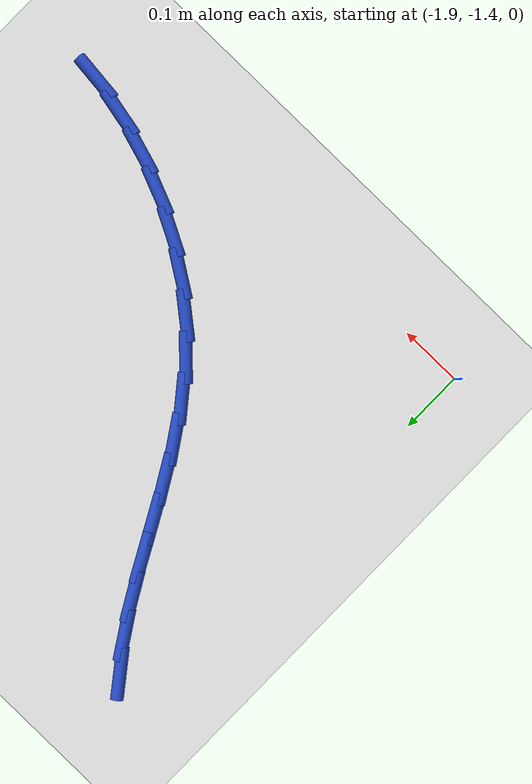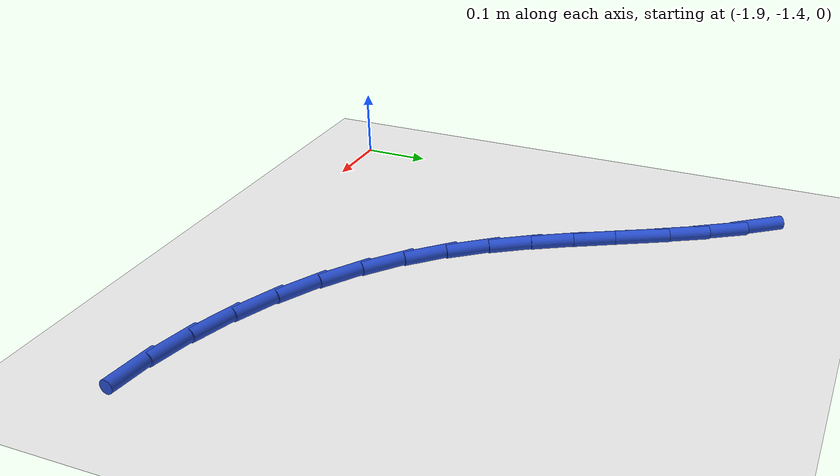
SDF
<sdf version="1.6">
 <world name="default">
  <model name="ground_plane">
   <static>1</static>
   <link name="link">
    <collision name="collision">
     <geometry><plane><normal>0 0 1</normal><size>100 100</size></plane></geometry>
     <surface><friction><ode><mu>100</mu><mu2>50</mu2></ode></friction></surface>
    </collision>
    <visual name="visual">
     <cast_shadows>0</cast_shadows>
     <geometry><plane><normal>0 0 1</normal><size>100 100</size></plane></geometry>
     <material>
      <script><uri>file://media/materials/scripts/gazebo.material</uri><name>Gazebo/WhiteGlow</name></script>
     </material>
    </visual>
   </link>
  </model>
  <model name="line">
   <link name="link_83">
    <pose>-1.8468231066801528 -0.7309183405497005 0.01 0 1.57 -0.9174701893394768</pose>
    <collision name="collision">
     <geometry><cylinder><radius>0.01</radius><length>0.08</length></cylinder></geometry>
    </collision>
    <visual name="visual">
     <material>
      <script><name>Gazebo/Blue</name><uri>file://media/materials/scripts/gazebo.material</uri></script>
     </material>
     <geometry><cylinder><radius>0.01</radius><length>0.08</length></cylinder></geometry>
    </visual>
   </link>
   <link name="link_84">
    <pose>-1.8115029330920873 -0.7770603903825963 0.01 0 1.57 -1.0002982382867316</pose>
    <collision name="collision">
     <geometry><cylinder><radius>0.01</radius><length>0.08</length></cylinder></geometry>
    </collision>
    <visual name="visual">
     <material>
      <script><name>Gazebo/Blue</name><uri>file://media/materials/scripts/gazebo.material</uri></script>
     </material>
     <geometry><cylinder><radius>0.01</radius><length>0.08</length></cylinder></geometry>
    </visual>
   </link>
   <link name="link_85">
    <pose>-1.7795704588663643 -0.8268249104516385 0.01 0 1.57 -1.0523314707818443</pose>
    <collision name="collision">
     <geometry><cylinder><radius>0.01</radius><length>0.08</length></cylinder></geometry>
    </collision>
    <visual name="visual">
     <material>
      <script><name>Gazebo/Blue</name><uri>file://media/materials/scripts/gazebo.material</uri></script>
     </material>
     <geometry><cylinder><radius>0.01</radius><length>0.08</length></cylinder></geometry>
    </visual>
   </link>
   <link name="link_86">
    <pose>-1.7497337659801382 -0.8791217979571092 0.01 0 1.57 -1.0754658863200435</pose>
    <collision name="collision">
     <geometry><cylinder><radius>0.01</radius><length>0.08</length></cylinder></geometry>
    </collision>
    <visual name="visual">
     <material>
      <script><name>Gazebo/Blue</name><uri>file://media/materials/scripts/gazebo.material</uri></script>
     </material>
     <geometry><cylinder><radius>0.01</radius><length>0.08</length></cylinder></geometry>
    </visual>
   </link>
   <link name="link_87">
    <pose>-1.720700936410567 -0.9328609500992884 0.01 0 1.57 -1.071214096571319</pose>
    <collision name="collision">
     <geometry><cylinder><radius>0.01</radius><length>0.08</length></cylinder></geometry>
    </collision>
    <visual name="visual">
     <material>
      <script><name>Gazebo/Blue</name><uri>file://media/materials/scripts/gazebo.material</uri></script>
     </material>
     <geometry><cylinder><radius>0.01</radius><length>0.08</length></cylinder></geometry>
    </visual>
   </link>
   <link name="link_88">
    <pose>-1.6911800521348057 -0.9869522640784579 0.01 0 1.57 -1.0402354906297222</pose>
    <collision name="collision">
     <geometry><cylinder><radius>0.01</radius><length>0.08</length></cylinder></geometry>
    </collision>
    <visual name="visual">
     <material>
      <script><name>Gazebo/Blue</name><uri>file://media/materials/scripts/gazebo.material</uri></script>
     </material>
     <geometry><cylinder><radius>0.01</radius><length>0.08</length></cylinder></geometry>
    </visual>
   </link>
   <link name="link_89">
    <pose>-1.6598791951300096 -1.0403056370948986 0.01 0 1.57 -0.9824910888613206</pose>
    <collision name="collision">
     <geometry><cylinder><radius>0.01</radius><length>0.08</length></cylinder></geometry>
    </collision>
    <visual name="visual">
     <material>
      <script><name>Gazebo/Blue</name><uri>file://media/materials/scripts/gazebo.material</uri></script>
     </material>
     <geometry><cylinder><radius>0.01</radius><length>0.08</length></cylinder></geometry>
    </visual>
   </link>
   <link name="link_90">
    <pose>-1.6255064473733352 -1.0918309663488919 0.01 0 1.57 -0.8979297079708197</pose>
    <collision name="collision">
     <geometry><cylinder><radius>0.01</radius><length>0.08</length></cylinder></geometry>
    </collision>
    <visual name="visual">
     <material>
      <script><name>Gazebo/Blue</name><uri>file://media/materials/scripts/gazebo.material</uri></script>
     </material>
     <geometry><cylinder><radius>0.01</radius><length>0.08</length></cylinder></geometry>
    </visual>
   </link>
   <link name="link_91">
    <pose>-1.5867698908419379 -1.1404381490407196 0.01 0 1.57 -0.7898309164221741</pose>
    <collision name="collision">
     <geometry><cylinder><radius>0.01</radius><length>0.08</length></cylinder></geometry>
    </collision>
    <visual name="visual">
     <material>
      <script><name>Gazebo/Blue</name><uri>file://media/materials/scripts/gazebo.material</uri></script>
     </material>
     <geometry><cylinder><radius>0.01</radius><length>0.08</length></cylinder></geometry>
    </visual>
   </link>
   <link name="link_92">
    <pose>-1.5425154459415424 -1.185086681463938 0.01 0 1.57 -0.6801835173942681</pose>
    <collision name="collision">
     <geometry><cylinder><radius>0.01</radius><length>0.08</length></cylinder></geometry>
    </collision>
    <visual name="visual">
     <material>
      <script><name>Gazebo/Blue</name><uri>file://media/materials/scripts/gazebo.material</uri></script>
     </material>
     <geometry><cylinder><radius>0.01</radius><length>0.08</length></cylinder></geometry>
    </visual>
   </link>
   <link name="link_93">
    <pose>-1.4929137288503598 -1.2252127318378112 0.01 0 1.57 -0.5787133989347424</pose>
    <collision name="collision">
     <geometry><cylinder><radius>0.01</radius><length>0.08</length></cylinder></geometry>
    </collision>
    <visual name="visual">
     <material>
      <script><name>Gazebo/Blue</name><uri>file://media/materials/scripts/gazebo.material</uri></script>
     </material>
     <geometry><cylinder><radius>0.01</radius><length>0.08</length></cylinder></geometry>
    </visual>
   </link>
   <link name="link_94">
    <pose>-1.438874306333256 -1.2605183686784567 0.01 0 1.57 -0.4830577213214534</pose>
    <collision name="collision">
     <geometry><cylinder><radius>0.01</radius><length>0.08</length></cylinder></geometry>
    </collision>
    <visual name="visual">
     <material>
      <script><name>Gazebo/Blue</name><uri>file://media/materials/scripts/gazebo.material</uri></script>
     </material>
     <geometry><cylinder><radius>0.01</radius><length>0.08</length></cylinder></geometry>
    </visual>
   </link>
   <link name="link_95">
    <pose>-1.3813147703483084 -1.2907085482475236 0.01 0 1.57 -0.390707471522246</pose>
    <collision name="collision">
     <geometry><cylinder><radius>0.01</radius><length>0.08</length></cylinder></geometry>
    </collision>
    <visual name="visual">
     <material>
      <script><name>Gazebo/Blue</name><uri>file://media/materials/scripts/gazebo.material</uri></script>
     </material>
     <geometry><cylinder><radius>0.01</radius><length>0.08</length></cylinder></geometry>
    </visual>
   </link>
   <link name="link_96">
    <pose>-1.32115271285359 -1.3154882268066617 0.01 0 1.57 -0.29915301139410033</pose>
    <collision name="collision">
     <geometry><cylinder><radius>0.01</radius><length>0.08</length></cylinder></geometry>
    </collision>
    <visual name="visual">
     <material>
      <script><name>Gazebo/Blue</name><uri>file://media/materials/scripts/gazebo.material</uri></script>
     </material>
     <geometry><cylinder><radius>0.01</radius><length>0.08</length></cylinder></geometry>
    </visual>
   </link>
   <link name="link_97">
    <pose>-1.2593057258071763 -1.334562360617522 0.01 0 1.57 -0.20583761828397798</pose>
    <collision name="collision">
     <geometry><cylinder><radius>0.01</radius><length>0.08</length></cylinder></geometry>
    </collision>
    <visual name="visual">
     <material>
      <script><name>Gazebo/Blue</name><uri>file://media/materials/scripts/gazebo.material</uri></script>
     </material>
     <geometry><cylinder><radius>0.01</radius><length>0.08</length></cylinder></geometry>
    </visual>
   </link>
   <link name="link_98">
    <pose>-1.1966914011671428 -1.347635905941755 0.01 0 1.57 -0.10808610337515898</pose>
    <collision name="collision">
     <geometry><cylinder><radius>0.01</radius><length>0.08</length></cylinder></geometry>
    </collision>
    <visual name="visual">
     <material>
      <script><name>Gazebo/Blue</name><uri>file://media/materials/scripts/gazebo.material</uri></script>
     </material>
     <geometry><cylinder><radius>0.01</radius><length>0.08</length></cylinder></geometry>
    </visual>
   </link>
  </model>
 </world>
</sdf>
